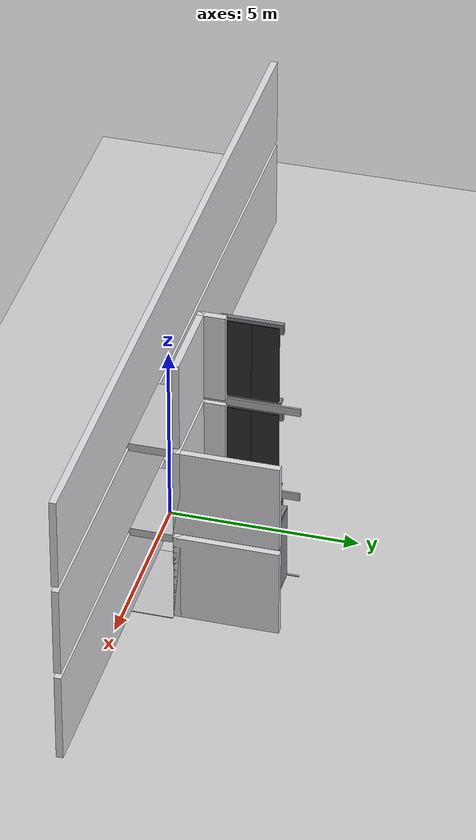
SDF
<sdf version="1.7">
 <world name="generated_world">
  <include><uri>model://sun</uri></include>
  <include><uri>model://ground_plane</uri></include>
  <model name="generated_building">
   <static>true</static>
   <link name="elevator_edge_infill_south_floor_0">
    <pose>2.8500 0.6250 -0.1100 0.0000 0.0000 0.0000</pose>
    <collision name="elevator_edge_infill_south_floor_0_collision">
     <geometry><box><size>2.5800 1.2500 0.2200</size></box></geometry>
    </collision>
    <visual name="elevator_edge_infill_south_floor_0_visual">
     <geometry><box><size>2.5800 1.2500 0.2200</size></box></geometry>
     <material><ambient>0.76 0.76 0.77 1</ambient><diffuse>0.76 0.76 0.77 1</diffuse></material>
    </visual>
    <gravity>false</gravity>
   </link>
   <link name="exterior_south_entrance_right">
    <pose>5.5100 0.0900 1.2250 0.0000 0.0000 0.0000</pose>
    <collision name="exterior_south_entrance_right_collision">
     <geometry><box><size>8.9800 0.1800 2.4500</size></box></geometry>
    </collision>
    <visual name="exterior_south_entrance_right_visual">
     <geometry><box><size>8.9800 0.1800 2.4500</size></box></geometry>
     <material><ambient>0.86 0.86 0.88 1</ambient><diffuse>0.86 0.86 0.88 1</diffuse></material>
    </visual>
    <gravity>false</gravity>
   </link>
   <link name="elevator_core_floor_0_west_lower">
    <pose>1.7400 1.6150 1.2250 0.0000 0.0000 0.0000</pose>
    <collision name="elevator_core_floor_0_west_lower_collision">
     <geometry><box><size>0.1800 0.7300 2.4500</size></box></geometry>
    </collision>
    <visual name="elevator_core_floor_0_west_lower_visual">
     <geometry><box><size>0.1800 0.7300 2.4500</size></box></geometry>
     <material><ambient>0.86 0.86 0.88 1</ambient><diffuse>0.86 0.86 0.88 1</diffuse></material>
    </visual>
    <gravity>false</gravity>
   </link>
   <link name="elevator_core_floor_0_east">
    <pose>3.9600 2.6000 1.2250 0.0000 0.0000 0.0000</pose>
    <collision name="elevator_core_floor_0_east_collision">
     <geometry><box><size>0.1800 2.7000 2.4500</size></box></geometry>
    </collision>
    <visual name="elevator_core_floor_0_east_visual">
     <geometry><box><size>0.1800 2.7000 2.4500</size></box></geometry>
     <material><ambient>0.86 0.86 0.88 1</ambient><diffuse>0.86 0.86 0.88 1</diffuse></material>
    </visual>
    <gravity>false</gravity>
   </link>
   <link name="elevator_core_floor_0_south">
    <pose>2.8500 1.3400 1.2250 0.0000 0.0000 0.0000</pose>
    <collision name="elevator_core_floor_0_south_collision">
     <geometry><box><size>2.4000 0.1800 2.4500</size></box></geometry>
    </collision>
    <visual name="elevator_core_floor_0_south_visual">
     <geometry><box><size>2.4000 0.1800 2.4500</size></box></geometry>
     <material><ambient>0.86 0.86 0.88 1</ambient><diffuse>0.86 0.86 0.88 1</diffuse></material>
    </visual>
    <gravity>false</gravity>
   </link>
   <link name="elevator_threshold_floor_0">
    <pose>1.5400 2.6000 0.0300 0.0000 0.0000 0.0000</pose>
    <collision name="elevator_threshold_floor_0_collision">
     <geometry><box><size>0.2200 1.5000 0.0600</size></box></geometry>
    </collision>
    <visual name="elevator_threshold_floor_0_visual">
     <geometry><box><size>0.2200 1.5000 0.0600</size></box></geometry>
     <material><ambient>0.50 0.51 0.54 1</ambient><diffuse>0.50 0.51 0.54 1</diffuse></material>
    </visual>
    <gravity>false</gravity>
   </link>
   <link name="elevator_sill_infill_floor_0">
    <pose>1.6750 2.6000 -0.1100 0.0000 0.0000 0.0000</pose>
    <collision name="elevator_sill_infill_floor_0_collision">
     <geometry><box><size>0.0500 2.5200 0.2200</size></box></geometry>
    </collision>
    <visual name="elevator_sill_infill_floor_0_visual">
     <geometry><box><size>0.0500 2.5200 0.2200</size></box></geometry>
     <material><ambient>0.72 0.72 0.73 1</ambient><diffuse>0.72 0.72 0.73 1</diffuse></material>
    </visual>
    <gravity>false</gravity>
   </link>
   <link name="elevator_header_floor_0">
    <pose>1.5900 2.6000 2.2600 0.0000 0.0000 0.0000</pose>
    <collision name="elevator_header_floor_0_collision">
     <geometry><box><size>0.1200 1.6000 0.2800</size></box></geometry>
    </collision>
    <visual name="elevator_header_floor_0_visual">
     <geometry><box><size>0.1200 1.6000 0.2800</size></box></geometry>
     <material><ambient>0.50 0.51 0.54 1</ambient><diffuse>0.50 0.51 0.54 1</diffuse></material>
    </visual>
    <gravity>false</gravity>
   </link>
   <link name="elevator_jamb_left_floor_0">
    <pose>1.5900 1.8500 1.1000 0.0000 0.0000 0.0000</pose>
    <collision name="elevator_jamb_left_floor_0_collision">
     <geometry><box><size>0.1200 0.1000 2.2000</size></box></geometry>
    </collision>
    <visual name="elevator_jamb_left_floor_0_visual">
     <geometry><box><size>0.1200 0.1000 2.2000</size></box></geometry>
     <material><ambient>0.50 0.51 0.54 1</ambient><diffuse>0.50 0.51 0.54 1</diffuse></material>
    </visual>
    <gravity>false</gravity>
   </link>
   <link name="elevator_edge_infill_south_floor_1">
    <pose>2.8500 0.6250 2.4900 0.0000 0.0000 0.0000</pose>
    <collision name="elevator_edge_infill_south_floor_1_collision">
     <geometry><box><size>2.5800 1.2500 0.2200</size></box></geometry>
    </collision>
    <visual name="elevator_edge_infill_south_floor_1_visual">
     <geometry><box><size>2.5800 1.2500 0.2200</size></box></geometry>
     <material><ambient>0.76 0.76 0.77 1</ambient><diffuse>0.76 0.76 0.77 1</diffuse></material>
    </visual>
    <gravity>false</gravity>
   </link>
   <link name="exterior_south_floor_1">
    <pose>0.0000 0.0900 3.8250 0.0000 0.0000 0.0000</pose>
    <collision name="exterior_south_floor_1_collision">
     <geometry><box><size>20.0000 0.1800 2.4500</size></box></geometry>
    </collision>
    <visual name="exterior_south_floor_1_visual">
     <geometry><box><size>20.0000 0.1800 2.4500</size></box></geometry>
     <material><ambient>0.86 0.86 0.88 1</ambient><diffuse>0.86 0.86 0.88 1</diffuse></material>
    </visual>
    <gravity>false</gravity>
   </link>
   <link name="elevator_core_floor_1_west_lower">
    <pose>1.7400 1.6150 3.8250 0.0000 0.0000 0.0000</pose>
    <collision name="elevator_core_floor_1_west_lower_collision">
     <geometry><box><size>0.1800 0.7300 2.4500</size></box></geometry>
    </collision>
    <visual name="elevator_core_floor_1_west_lower_visual">
     <geometry><box><size>0.1800 0.7300 2.4500</size></box></geometry>
     <material><ambient>0.86 0.86 0.88 1</ambient><diffuse>0.86 0.86 0.88 1</diffuse></material>
    </visual>
    <gravity>false</gravity>
   </link>
   <link name="elevator_core_floor_1_east">
    <pose>3.9600 2.6000 3.8250 0.0000 0.0000 0.0000</pose>
    <collision name="elevator_core_floor_1_east_collision">
     <geometry><box><size>0.1800 2.7000 2.4500</size></box></geometry>
    </collision>
    <visual name="elevator_core_floor_1_east_visual">
     <geometry><box><size>0.1800 2.7000 2.4500</size></box></geometry>
     <material><ambient>0.86 0.86 0.88 1</ambient><diffuse>0.86 0.86 0.88 1</diffuse></material>
    </visual>
    <gravity>false</gravity>
   </link>
   <link name="elevator_core_floor_1_south">
    <pose>2.8500 1.3400 3.8250 0.0000 0.0000 0.0000</pose>
    <collision name="elevator_core_floor_1_south_collision">
     <geometry><box><size>2.4000 0.1800 2.4500</size></box></geometry>
    </collision>
    <visual name="elevator_core_floor_1_south_visual">
     <geometry><box><size>2.4000 0.1800 2.4500</size></box></geometry>
     <material><ambient>0.86 0.86 0.88 1</ambient><diffuse>0.86 0.86 0.88 1</diffuse></material>
    </visual>
    <gravity>false</gravity>
   </link>
   <link name="elevator_threshold_floor_1">
    <pose>1.5400 2.6000 2.6300 0.0000 0.0000 0.0000</pose>
    <collision name="elevator_threshold_floor_1_collision">
     <geometry><box><size>0.2200 1.5000 0.0600</size></box></geometry>
    </collision>
    <visual name="elevator_threshold_floor_1_visual">
     <geometry><box><size>0.2200 1.5000 0.0600</size></box></geometry>
     <material><ambient>0.50 0.51 0.54 1</ambient><diffuse>0.50 0.51 0.54 1</diffuse></material>
    </visual>
    <gravity>false</gravity>
   </link>
   <link name="elevator_sill_infill_floor_1">
    <pose>1.6750 2.6000 2.4900 0.0000 0.0000 0.0000</pose>
    <collision name="elevator_sill_infill_floor_1_collision">
     <geometry><box><size>0.0500 2.5200 0.2200</size></box></geometry>
    </collision>
    <visual name="elevator_sill_infill_floor_1_visual">
     <geometry><box><size>0.0500 2.5200 0.2200</size></box></geometry>
     <material><ambient>0.72 0.72 0.73 1</ambient><diffuse>0.72 0.72 0.73 1</diffuse></material>
    </visual>
    <gravity>false</gravity>
   </link>
   <link name="elevator_header_floor_1">
    <pose>1.5900 2.6000 4.8600 0.0000 0.0000 0.0000</pose>
    <collision name="elevator_header_floor_1_collision">
     <geometry><box><size>0.1200 1.6000 0.2800</size></box></geometry>
    </collision>
    <visual name="elevator_header_floor_1_visual">
     <geometry><box><size>0.1200 1.6000 0.2800</size></box></geometry>
     <material><ambient>0.50 0.51 0.54 1</ambient><diffuse>0.50 0.51 0.54 1</diffuse></material>
    </visual>
    <gravity>false</gravity>
   </link>
   <link name="elevator_jamb_left_floor_1">
    <pose>1.5900 1.8500 3.7000 0.0000 0.0000 0.0000</pose>
    <collision name="elevator_jamb_left_floor_1_collision">
     <geometry><box><size>0.1200 0.1000 2.2000</size></box></geometry>
    </collision>
    <visual name="elevator_jamb_left_floor_1_visual">
     <geometry><box><size>0.1200 0.1000 2.2000</size></box></geometry>
     <material><ambient>0.50 0.51 0.54 1</ambient><diffuse>0.50 0.51 0.54 1</diffuse></material>
    </visual>
    <gravity>false</gravity>
   </link>
   <link name="elevator_edge_infill_south_floor_2">
    <pose>2.8500 0.6250 5.0900 0.0000 0.0000 0.0000</pose>
    <collision name="elevator_edge_infill_south_floor_2_collision">
     <geometry><box><size>2.5800 1.2500 0.2200</size></box></geometry>
    </collision>
    <visual name="elevator_edge_infill_south_floor_2_visual">
     <geometry><box><size>2.5800 1.2500 0.2200</size></box></geometry>
     <material><ambient>0.76 0.76 0.77 1</ambient><diffuse>0.76 0.76 0.77 1</diffuse></material>
    </visual>
    <gravity>false</gravity>
   </link>
   <link name="exterior_south_floor_2">
    <pose>0.0000 0.0900 6.4250 0.0000 0.0000 0.0000</pose>
    <collision name="exterior_south_floor_2_collision">
     <geometry><box><size>20.0000 0.1800 2.4500</size></box></geometry>
    </collision>
    <visual name="exterior_south_floor_2_visual">
     <geometry><box><size>20.0000 0.1800 2.4500</size></box></geometry>
     <material><ambient>0.86 0.86 0.88 1</ambient><diffuse>0.86 0.86 0.88 1</diffuse></material>
    </visual>
    <gravity>false</gravity>
   </link>
   <link name="elevator_core_floor_2_west_lower">
    <pose>1.7400 1.6150 6.4250 0.0000 0.0000 0.0000</pose>
    <collision name="elevator_core_floor_2_west_lower_collision">
     <geometry><box><size>0.1800 0.7300 2.4500</size></box></geometry>
    </collision>
    <visual name="elevator_core_floor_2_west_lower_visual">
     <geometry><box><size>0.1800 0.7300 2.4500</size></box></geometry>
     <material><ambient>0.86 0.86 0.88 1</ambient><diffuse>0.86 0.86 0.88 1</diffuse></material>
    </visual>
    <gravity>false</gravity>
   </link>
   <link name="elevator_core_floor_2_south">
    <pose>2.8500 1.3400 6.4250 0.0000 0.0000 0.0000</pose>
    <collision name="elevator_core_floor_2_south_collision">
     <geometry><box><size>2.4000 0.1800 2.4500</size></box></geometry>
    </collision>
    <visual name="elevator_core_floor_2_south_visual">
     <geometry><box><size>2.4000 0.1800 2.4500</size></box></geometry>
     <material><ambient>0.86 0.86 0.88 1</ambient><diffuse>0.86 0.86 0.88 1</diffuse></material>
    </visual>
    <gravity>false</gravity>
   </link>
   <link name="elevator_threshold_floor_2">
    <pose>1.5400 2.6000 5.2300 0.0000 0.0000 0.0000</pose>
    <collision name="elevator_threshold_floor_2_collision">
     <geometry><box><size>0.2200 1.5000 0.0600</size></box></geometry>
    </collision>
    <visual name="elevator_threshold_floor_2_visual">
     <geometry><box><size>0.2200 1.5000 0.0600</size></box></geometry>
     <material><ambient>0.50 0.51 0.54 1</ambient><diffuse>0.50 0.51 0.54 1</diffuse></material>
    </visual>
    <gravity>false</gravity>
   </link>
   <link name="elevator_sill_infill_floor_2">
    <pose>1.6750 2.6000 5.0900 0.0000 0.0000 0.0000</pose>
    <collision name="elevator_sill_infill_floor_2_collision">
     <geometry><box><size>0.0500 2.5200 0.2200</size></box></geometry>
    </collision>
    <visual name="elevator_sill_infill_floor_2_visual">
     <geometry><box><size>0.0500 2.5200 0.2200</size></box></geometry>
     <material><ambient>0.72 0.72 0.73 1</ambient><diffuse>0.72 0.72 0.73 1</diffuse></material>
    </visual>
    <gravity>false</gravity>
   </link>
   <link name="elevator_header_floor_2">
    <pose>1.5900 2.6000 7.4600 0.0000 0.0000 0.0000</pose>
    <collision name="elevator_header_floor_2_collision">
     <geometry><box><size>0.1200 1.6000 0.2800</size></box></geometry>
    </collision>
    <visual name="elevator_header_floor_2_visual">
     <geometry><box><size>0.1200 1.6000 0.2800</size></box></geometry>
     <material><ambient>0.50 0.51 0.54 1</ambient><diffuse>0.50 0.51 0.54 1</diffuse></material>
    </visual>
    <gravity>false</gravity>
   </link>
   <link name="elevator_jamb_left_floor_2">
    <pose>1.5900 1.8500 6.3000 0.0000 0.0000 0.0000</pose>
    <collision name="elevator_jamb_left_floor_2_collision">
     <geometry><box><size>0.1200 0.1000 2.2000</size></box></geometry>
    </collision>
    <visual name="elevator_jamb_left_floor_2_visual">
     <geometry><box><size>0.1200 0.1000 2.2000</size></box></geometry>
     <material><ambient>0.50 0.51 0.54 1</ambient><diffuse>0.50 0.51 0.54 1</diffuse></material>
    </visual>
    <gravity>false</gravity>
   </link>
  </model>
  <model name="dynamic_elevator_floor_0">
   <static>false</static>
   <pose>1.6500 2.6000 1.2000 0.0000 0.0000 3.1416</pose>
   <link name="left_panel">
    <gravity>false</gravity>
    <kinematic>true</kinematic>
    <pose>0.0000 -0.3500 0.0000 0.0000 0.0000 0.0000</pose>
    <collision name="left_panel_collision">
     <geometry><box><size>0.0600 0.7000 2.2000</size></box></geometry>
    </collision>
    <visual name="left_panel_visual">
     <geometry><box><size>0.0600 0.7000 2.2000</size></box></geometry>
     <material><ambient>0.18 0.18 0.20 1</ambient><diffuse>0.18 0.18 0.20 1</diffuse></material>
    </visual>
   </link>
   <link name="right_panel">
    <gravity>false</gravity>
    <kinematic>true</kinematic>
    <pose>0.0000 0.3500 0.0000 0.0000 0.0000 0.0000</pose>
    <collision name="right_panel_collision">
     <geometry><box><size>0.0600 0.7000 2.2000</size></box></geometry>
    </collision>
    <visual name="right_panel_visual">
     <geometry><box><size>0.0600 0.7000 2.2000</size></box></geometry>
     <material><ambient>0.18 0.18 0.20 1</ambient><diffuse>0.18 0.18 0.20 1</diffuse></material>
    </visual>
   </link>
  </model>
  <model name="dynamic_elevator_floor_1">
   <static>false</static>
   <pose>1.6500 2.6000 3.8000 0.0000 0.0000 3.1416</pose>
   <link name="left_panel">
    <gravity>false</gravity>
    <kinematic>true</kinematic>
    <pose>0.0000 -0.3500 0.0000 0.0000 0.0000 0.0000</pose>
    <collision name="left_panel_collision">
     <geometry><box><size>0.0600 0.7000 2.2000</size></box></geometry>
    </collision>
    <visual name="left_panel_visual">
     <geometry><box><size>0.0600 0.7000 2.2000</size></box></geometry>
     <material><ambient>0.18 0.18 0.20 1</ambient><diffuse>0.18 0.18 0.20 1</diffuse></material>
    </visual>
   </link>
   <link name="right_panel">
    <gravity>false</gravity>
    <kinematic>true</kinematic>
    <pose>0.0000 0.3500 0.0000 0.0000 0.0000 0.0000</pose>
    <collision name="right_panel_collision">
     <geometry><box><size>0.0600 0.7000 2.2000</size></box></geometry>
    </collision>
    <visual name="right_panel_visual">
     <geometry><box><size>0.0600 0.7000 2.2000</size></box></geometry>
     <material><ambient>0.18 0.18 0.20 1</ambient><diffuse>0.18 0.18 0.20 1</diffuse></material>
    </visual>
   </link>
  </model>
  <model name="dynamic_elevator_floor_2">
   <static>false</static>
   <pose>1.6500 2.6000 6.4000 0.0000 0.0000 3.1416</pose>
   <link name="left_panel">
    <gravity>false</gravity>
    <kinematic>true</kinematic>
    <pose>0.0000 -0.3500 0.0000 0.0000 0.0000 0.0000</pose>
    <collision name="left_panel_collision">
     <geometry><box><size>0.0600 0.7000 2.2000</size></box></geometry>
    </collision>
    <visual name="left_panel_visual">
     <geometry><box><size>0.0600 0.7000 2.2000</size></box></geometry>
     <material><ambient>0.18 0.18 0.20 1</ambient><diffuse>0.18 0.18 0.20 1</diffuse></material>
    </visual>
   </link>
   <link name="right_panel">
    <gravity>false</gravity>
    <kinematic>true</kinematic>
    <pose>0.0000 0.3500 0.0000 0.0000 0.0000 0.0000</pose>
    <collision name="right_panel_collision">
     <geometry><box><size>0.0600 0.7000 2.2000</size></box></geometry>
    </collision>
    <visual name="right_panel_visual">
     <geometry><box><size>0.0600 0.7000 2.2000</size></box></geometry>
     <material><ambient>0.18 0.18 0.20 1</ambient><diffuse>0.18 0.18 0.20 1</diffuse></material>
    </visual>
   </link>
  </model>
  <model name="dynamic_elevator_main">
   <static>false</static>
   <pose>2.7600 2.6000 1.0300 0.0000 0.0000 -1.5708</pose>
   <link name="car">
    <gravity>false</gravity>
    <kinematic>true</kinematic>
    <collision name="car_floor_collision">
     <pose>0.0000 0.0000 -1.0900 0.0000 0.0000 0.0000</pose>
     <geometry><box><size>1.9000 2.1000 0.1200</size></box></geometry>
    </collision>
    <visual name="car_floor_visual">
     <pose>0.0000 0.0000 -1.0900 0.0000 0.0000 0.0000</pose>
     <geometry><box><size>1.9000 2.1000 0.1200</size></box></geometry>
     <material><ambient>0.32 0.32 0.35 1</ambient><diffuse>0.32 0.32 0.35 1</diffuse></material>
    </visual>
    <collision name="back_collision">
     <pose>0.0000 1.0100 0.0000 0.0000 0.0000 0.0000</pose>
     <geometry><box><size>1.9000 0.0800 2.3000</size></box></geometry>
    </collision>
    <visual name="back_visual">
     <pose>0.0000 1.0100 0.0000 0.0000 0.0000 0.0000</pose>
     <geometry><box><size>1.9000 0.0800 2.3000</size></box></geometry>
     <material><ambient>0.55 0.56 0.58 1</ambient><diffuse>0.55 0.56 0.58 1</diffuse></material>
    </visual>
    <collision name="left_collision">
     <pose>-0.9100 0.0000 0.0000 0.0000 0.0000 0.0000</pose>
     <geometry><box><size>0.0800 2.1000 2.3000</size></box></geometry>
    </collision>
    <visual name="left_visual">
     <pose>-0.9100 0.0000 0.0000 0.0000 0.0000 0.0000</pose>
     <geometry><box><size>0.0800 2.1000 2.3000</size></box></geometry>
     <material><ambient>0.55 0.56 0.58 1</ambient><diffuse>0.55 0.56 0.58 1</diffuse></material>
    </visual>
    <collision name="right_collision">
     <pose>0.9100 0.0000 0.0000 0.0000 0.0000 0.0000</pose>
     <geometry><box><size>0.0800 2.1000 2.3000</size></box></geometry>
    </collision>
    <visual name="right_visual">
     <pose>0.9100 0.0000 0.0000 0.0000 0.0000 0.0000</pose>
     <geometry><box><size>0.0800 2.1000 2.3000</size></box></geometry>
     <material><ambient>0.55 0.56 0.58 1</ambient><diffuse>0.55 0.56 0.58 1</diffuse></material>
    </visual>
    <collision name="top_collision">
     <pose>0.0000 0.0000 1.1200 0.0000 0.0000 0.0000</pose>
     <geometry><box><size>1.9000 2.1000 0.0600</size></box></geometry>
    </collision>
    <visual name="top_visual">
     <pose>0.0000 0.0000 1.1200 0.0000 0.0000 0.0000</pose>
     <geometry><box><size>1.9000 2.1000 0.0600</size></box></geometry>
     <material><ambient>0.55 0.56 0.58 1</ambient><diffuse>0.55 0.56 0.58 1</diffuse></material>
    </visual>
   </link>
  </model>
 </world>
</sdf>
